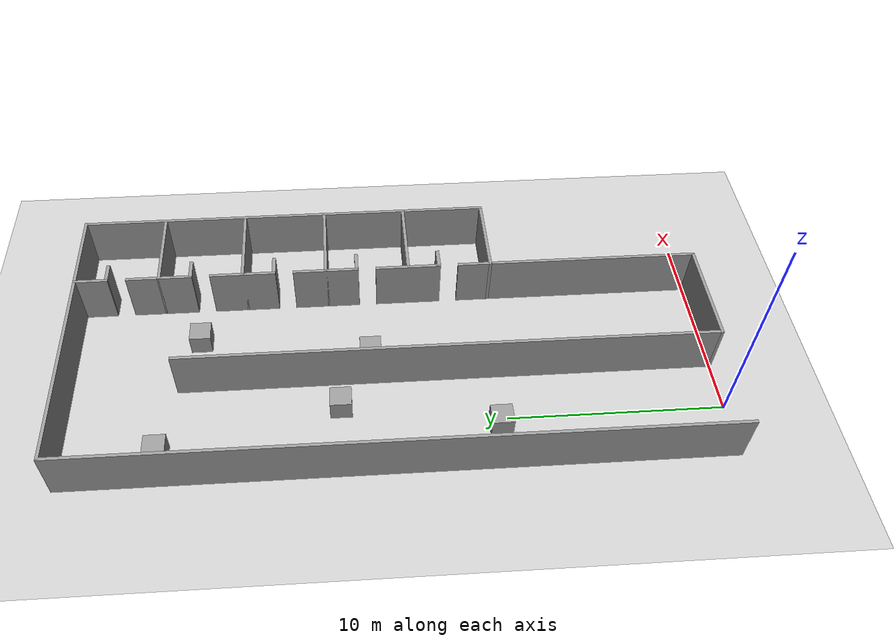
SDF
<sdf version="1.7">
 <world name="default">
  <light name="sun" type="directional">
   <pose>0 0 10 0 -0 0</pose>
   <diffuse>0.8 0.8 0.8 1</diffuse>
   <specular>0.2 0.2 0.2 1</specular>
   <attenuation>
    <range>1000</range>
    <constant>0.9</constant>
    <linear>0.01</linear>
    <quadratic>0.001</quadratic>
   </attenuation>
   <direction>-0.5 0.1 -0.9</direction>
   <spot><inner_angle>0</inner_angle><outer_angle>0</outer_angle><falloff>0</falloff></spot>
  </light>
  <model name="ground_plane">
   <static>1</static>
   <link name="link">
    <collision name="collision">
     <geometry><plane><normal>0 0 1</normal><size>100 100</size></plane></geometry>
     <surface>
      <contact><collide_bitmask>65535</collide_bitmask></contact>
      <friction><ode><mu>100</mu><mu2>50</mu2></ode></friction>
     </surface>
    </collision>
    <visual name="visual">
     <cast_shadows>0</cast_shadows>
     <geometry><plane><normal>0 0 1</normal><size>100 100</size></plane></geometry>
     <material>
      <script><uri>file://media/materials/scripts/gazebo.material</uri><name>Gazebo/Grey</name></script>
     </material>
    </visual>
   </link>
  </model>
  <gravity>0 0 -9.8</gravity>
  <magnetic_field>6e-06 2.3e-05 -4.2e-05</magnetic_field>
  <atmosphere type="adiabatic"/>
  <physics type="ode">
   <max_step_size>0.001</max_step_size>
   <real_time_factor>1</real_time_factor>
   <real_time_update_rate>1000</real_time_update_rate>
  </physics>
  <scene><ambient>0.4 0.4 0.4 1</ambient><background>0.7 0.7 0.7 1</background><shadows>1</shadows></scene>
  <spherical_coordinates>
   <surface_model>EARTH_WGS84</surface_model>
   <latitude_deg>0</latitude_deg>
   <longitude_deg>0</longitude_deg>
   <elevation>0</elevation>
   <heading_deg>0</heading_deg>
  </spherical_coordinates>
  <model name="World_map">
   <pose>4.5 15 0 0 -0 0</pose>
   <link name="Door_10">
    <collision name="Door_10_Collision">
     <geometry><box><size>1 0.17 2.5</size></box></geometry>
     <pose>0 0 1.25 0 -0 0</pose>
    </collision>
    <visual name="Door_10_Visual">
     <pose>0 0 1.25 0 -0 0</pose>
     <geometry><box><size>1 0.17 2.5</size></box></geometry>
     <material>
      <script><uri>file://media/materials/scripts/gazebo.material</uri><name>Gazebo/Grey</name></script>
     </material>
    </visual>
    <pose>3.5 5.5 0 0 -0 0</pose>
   </link>
   <link name="Door_6">
    <collision name="Door_6_Collision">
     <geometry><box><size>1 0.17 2.5</size></box></geometry>
     <pose>0 0 1.25 0 -0 0</pose>
    </collision>
    <visual name="Door_6_Visual">
     <pose>0 0 1.25 0 -0 0</pose>
     <geometry><box><size>1 0.17 2.5</size></box></geometry>
     <material>
      <script><uri>file://media/materials/scripts/gazebo.material</uri><name>Gazebo/Grey</name></script>
     </material>
    </visual>
    <pose>3.5 9.5 0 0 -0 0</pose>
   </link>
   <link name="Door_7">
    <collision name="Door_7_Collision">
     <geometry><box><size>1 0.17 2.5</size></box></geometry>
     <pose>0 0 1.25 0 -0 0</pose>
    </collision>
    <visual name="Door_7_Visual">
     <pose>0 0 1.25 0 -0 0</pose>
     <geometry><box><size>1 0.17 2.5</size></box></geometry>
     <material>
      <script><uri>file://media/materials/scripts/gazebo.material</uri><name>Gazebo/Grey</name></script>
     </material>
    </visual>
    <pose>3.5 -2.5 0 0 -0 0</pose>
   </link>
   <link name="Door_8">
    <collision name="Door_8_Collision">
     <geometry><box><size>1 0.17 2.5</size></box></geometry>
     <pose>0 0 1.25 0 -0 0</pose>
    </collision>
    <visual name="Door_8_Visual">
     <pose>0 0 1.25 0 -0 0</pose>
     <geometry><box><size>1 0.17 2.5</size></box></geometry>
     <material>
      <script><uri>file://media/materials/scripts/gazebo.material</uri><name>Gazebo/Grey</name></script>
     </material>
    </visual>
    <pose>3.5 1.5 0 0 -0 0</pose>
   </link>
   <link name="Door_9">
    <collision name="Door_9_Collision">
     <geometry><box><size>1 0.17 2.5</size></box></geometry>
     <pose>0 0 1.25 0 -0 0</pose>
    </collision>
    <visual name="Door_9_Visual">
     <pose>0 0 1.25 0 -0 0</pose>
     <geometry><box><size>1 0.17 2.5</size></box></geometry>
     <material>
      <script><uri>file://media/materials/scripts/gazebo.material</uri><name>Gazebo/Grey</name></script>
     </material>
    </visual>
    <pose>3.5 13.5 0 0 -0 0</pose>
   </link>
   <link name="Wall_28">
    <collision name="Wall_28_Collision">
     <geometry><box><size>3.15 0.15 2.5</size></box></geometry>
     <pose>0 0 1.25 0 -0 0</pose>
    </collision>
    <visual name="Wall_28_Visual">
     <pose>0 0 1.25 0 -0 0</pose>
     <geometry><box><size>3.15 0.15 2.5</size></box></geometry>
     <material>
      <script><uri>file://media/materials/scripts/gazebo.material</uri><name>Gazebo/Grey</name></script>
      <ambient>1 1 1 1</ambient>
     </material>
     <meta><layer>0</layer></meta>
    </visual>
    <pose>3 7 0 0 -0 -1.5708</pose>
   </link>
   <link name="Wall_30">
    <collision name="Wall_30_Collision">
     <geometry><box><size>3.15 0.15 2.5</size></box></geometry>
     <pose>0 0 1.25 0 -0 0</pose>
    </collision>
    <visual name="Wall_30_Visual">
     <pose>0 0 1.25 0 -0 0</pose>
     <geometry><box><size>3.15 0.15 2.5</size></box></geometry>
     <material>
      <script><uri>file://media/materials/scripts/gazebo.material</uri><name>Gazebo/Grey</name></script>
      <ambient>1 1 1 1</ambient>
     </material>
     <meta><layer>0</layer></meta>
    </visual>
    <pose>3 11 0 0 -0 -1.5708</pose>
   </link>
   <link name="Wall_32">
    <collision name="Wall_32_Collision">
     <geometry><box><size>3.15 0.15 2.5</size></box></geometry>
     <pose>0 0 1.25 0 -0 0</pose>
    </collision>
    <visual name="Wall_32_Visual">
     <pose>0 0 1.25 0 -0 0</pose>
     <geometry><box><size>3.15 0.15 2.5</size></box></geometry>
     <material>
      <script><uri>file://media/materials/scripts/gazebo.material</uri><name>Gazebo/Grey</name></script>
      <ambient>1 1 1 1</ambient>
     </material>
     <meta><layer>0</layer></meta>
    </visual>
    <pose>3 3 0 0 -0 -1.5708</pose>
   </link>
   <link name="Wall_34">
    <collision name="Wall_34_Collision">
     <geometry><box><size>3.15 0.15 2.5</size></box></geometry>
     <pose>0 0 1.25 0 -0 0</pose>
    </collision>
    <visual name="Wall_34_Visual">
     <pose>0 0 1.25 0 -0 0</pose>
     <geometry><box><size>3.15 0.15 2.5</size></box></geometry>
     <material>
      <script><uri>file://media/materials/scripts/gazebo.material</uri><name>Gazebo/Grey</name></script>
      <ambient>1 1 1 1</ambient>
     </material>
     <meta><layer>0</layer></meta>
    </visual>
    <pose>3 -1 0 0 -0 -1.5708</pose>
   </link>
   <link name="Wall_36">
    <collision name="Wall_36_Collision">
     <geometry><box><size>4.15 0.15 2.5</size></box></geometry>
     <pose>0 0 1.25 0 -0 0</pose>
    </collision>
    <visual name="Wall_36_Visual">
     <pose>0 0 1.25 0 -0 0</pose>
     <geometry><box><size>4.15 0.15 2.5</size></box></geometry>
     <material>
      <script><uri>file://media/materials/scripts/gazebo.material</uri><name>Gazebo/Grey</name></script>
      <ambient>1 1 1 1</ambient>
     </material>
     <meta><layer>0</layer></meta>
    </visual>
    <pose>5 15 0 0 -0 0</pose>
   </link>
   <link name="Wall_38">
    <collision name="Wall_38_Collision">
     <geometry><box><size>4.15 0.15 2.5</size></box></geometry>
     <pose>0 0 1.25 0 -0 0</pose>
    </collision>
    <visual name="Wall_38_Visual">
     <pose>0 0 1.25 0 -0 0</pose>
     <geometry><box><size>4.15 0.15 2.5</size></box></geometry>
     <material>
      <script><uri>file://media/materials/scripts/gazebo.material</uri><name>Gazebo/Grey</name></script>
      <ambient>1 1 1 1</ambient>
     </material>
     <meta><layer>0</layer></meta>
    </visual>
    <pose>5 11 0 0 -0 0</pose>
   </link>
   <link name="Wall_40">
    <collision name="Wall_40_Collision">
     <geometry><box><size>4.15 0.15 2.5</size></box></geometry>
     <pose>0 0 1.25 0 -0 0</pose>
    </collision>
    <visual name="Wall_40_Visual">
     <pose>0 0 1.25 0 -0 0</pose>
     <geometry><box><size>4.15 0.15 2.5</size></box></geometry>
     <material>
      <script><uri>file://media/materials/scripts/gazebo.material</uri><name>Gazebo/Grey</name></script>
      <ambient>1 1 1 1</ambient>
     </material>
     <meta><layer>0</layer></meta>
    </visual>
    <pose>5 7 0 0 -0 0</pose>
   </link>
   <link name="Wall_42">
    <collision name="Wall_42_Collision">
     <geometry><box><size>5.15 0.15 2.5</size></box></geometry>
     <pose>0 0 1.25 0 -0 0</pose>
    </collision>
    <visual name="Wall_42_Visual">
     <pose>0 0 1.25 0 -0 0</pose>
     <geometry><box><size>5.15 0.15 2.5</size></box></geometry>
     <material>
      <script><uri>file://media/materials/scripts/gazebo.material</uri><name>Gazebo/Grey</name></script>
      <ambient>1 1 1 1</ambient>
     </material>
     <meta><layer>0</layer></meta>
    </visual>
    <pose>0.5 -15 0 0 -0 0</pose>
   </link>
   <link name="Wall_44">
    <collision name="Wall_44_Collision">
     <geometry><box><size>25.15 0.15 2.5</size></box></geometry>
     <pose>0 0 1.25 0 -0 0</pose>
    </collision>
    <visual name="Wall_44_Visual">
     <pose>0 0 1.25 0 -0 0</pose>
     <geometry><box><size>25.15 0.15 2.5</size></box></geometry>
     <material>
      <script><uri>file://media/materials/scripts/gazebo.material</uri><name>Gazebo/Grey</name></script>
      <ambient>1 1 1 1</ambient>
     </material>
     <meta><layer>0</layer></meta>
    </visual>
    <pose>-2 -2.5 0 0 -0 1.5708</pose>
   </link>
   <link name="Wall_46">
    <collision name="Wall_46_Collision">
     <geometry><box><size>10.15 0.15 2.5</size></box></geometry>
     <pose>0 0 1.25 0 -0 0</pose>
    </collision>
    <visual name="Wall_46_Visual">
     <pose>0 0 1.25 0 -0 0</pose>
     <geometry><box><size>10.15 0.15 2.5</size></box></geometry>
     <material>
      <script><uri>file://media/materials/scripts/gazebo.material</uri><name>Gazebo/Grey</name></script>
      <ambient>1 1 1 1</ambient>
     </material>
     <meta><layer>0</layer></meta>
    </visual>
    <pose>-2 15 0 0 -0 0</pose>
   </link>
   <link name="Wall_48">
    <collision name="Wall_48_Collision">
     <geometry><box><size>4.15 0.15 2.5</size></box></geometry>
     <pose>0 0 1.25 0 -0 0</pose>
    </collision>
    <visual name="Wall_48_Visual">
     <pose>0 0 1.25 0 -0 0</pose>
     <geometry><box><size>4.15 0.15 2.5</size></box></geometry>
     <material>
      <script><uri>file://media/materials/scripts/gazebo.material</uri><name>Gazebo/Grey</name></script>
      <ambient>1 1 1 1</ambient>
     </material>
     <meta><layer>0</layer></meta>
    </visual>
    <pose>5 3 0 0 -0 0</pose>
   </link>
   <link name="Wall_50">
    <collision name="Wall_50_Collision">
     <geometry><box><size>1.65 0.15 2.5</size></box></geometry>
     <pose>0 0 1.25 0 -0 0</pose>
    </collision>
    <visual name="Wall_50_Visual">
     <pose>0 0 1.25 0 -0 0</pose>
     <geometry><box><size>1.65 0.15 2.5</size></box></geometry>
     <material>
      <script><uri>file://media/materials/scripts/gazebo.material</uri><name>Gazebo/Grey</name></script>
      <ambient>1 1 1 1</ambient>
     </material>
     <meta><layer>0</layer></meta>
    </visual>
    <pose>3 14.25 0 0 -0 -1.5708</pose>
   </link>
   <link name="Wall_52">
    <collision name="Wall_52_Collision">
     <geometry><box><size>11.65 0.15 2.5</size></box></geometry>
     <pose>0 0 1.25 0 -0 0</pose>
    </collision>
    <visual name="Wall_52_Visual">
     <pose>0 0 1.25 0 -0 0</pose>
     <geometry><box><size>11.65 0.15 2.5</size></box></geometry>
     <material>
      <script><uri>file://media/materials/scripts/gazebo.material</uri><name>Gazebo/Grey</name></script>
      <ambient>1 1 1 1</ambient>
     </material>
     <meta><layer>0</layer></meta>
    </visual>
    <pose>3 -9.25 0 0 -0 -1.5708</pose>
   </link>
   <link name="Wall_54">
    <collision name="Wall_54_Collision">
     <geometry><box><size>4.15 0.15 2.5</size></box></geometry>
     <pose>0 0 1.25 0 -0 0</pose>
    </collision>
    <visual name="Wall_54_Visual">
     <pose>0 0 1.25 0 -0 0</pose>
     <geometry><box><size>4.15 0.15 2.5</size></box></geometry>
     <material>
      <script><uri>file://media/materials/scripts/gazebo.material</uri><name>Gazebo/Grey</name></script>
      <ambient>1 1 1 1</ambient>
     </material>
     <meta><layer>0</layer></meta>
    </visual>
    <pose>5 -1 0 0 -0 0</pose>
   </link>
   <link name="Wall_56">
    <collision name="Wall_56_Collision">
     <geometry><box><size>4.15 0.15 2.5</size></box></geometry>
     <pose>0 0 1.25 0 -0 0</pose>
    </collision>
    <visual name="Wall_56_Visual">
     <pose>0 0 1.25 0 -0 0</pose>
     <geometry><box><size>4.15 0.15 2.5</size></box></geometry>
     <material>
      <script><uri>file://media/materials/scripts/gazebo.material</uri><name>Gazebo/Grey</name></script>
      <ambient>1 1 1 1</ambient>
     </material>
     <meta><layer>0</layer></meta>
    </visual>
    <pose>5 -5 0 0 -0 0</pose>
   </link>
   <link name="Wall_58">
    <collision name="Wall_58_Collision">
     <geometry><box><size>30.15 0.15 2.5</size></box></geometry>
     <pose>0 0 1.25 0 -0 0</pose>
    </collision>
    <visual name="Wall_58_Visual">
     <pose>0 0 1.25 0 -0 0</pose>
     <geometry><box><size>30.15 0.15 2.5</size></box></geometry>
     <material>
      <script><uri>file://media/materials/scripts/gazebo.material</uri><name>Gazebo/Grey</name></script>
      <ambient>1 1 1 1</ambient>
     </material>
     <meta><layer>0</layer></meta>
    </visual>
    <pose>-7 0 0 0 -0 1.5708</pose>
   </link>
   <link name="Wall_60">
    <collision name="Wall_60_Collision">
     <geometry><box><size>20.15 0.15 2.5</size></box></geometry>
     <pose>0 0 1.25 0 -0 0</pose>
    </collision>
    <visual name="Wall_60_Visual">
     <pose>0 0 1.25 0 -0 0</pose>
     <geometry><box><size>20.15 0.15 2.5</size></box></geometry>
     <material>
      <script><uri>file://media/materials/scripts/gazebo.material</uri><name>Gazebo/Grey</name></script>
      <ambient>1 1 1 1</ambient>
     </material>
     <meta><layer>0</layer></meta>
    </visual>
    <pose>7 5 0 0 -0 -1.5708</pose>
   </link>
   <static>1</static>
  </model>
  <model name="unit_box">
   <pose>-0.373306 10.3575 0.499995 0 1e-05 0</pose>
   <link name="link">
    <inertial>
     <mass>1</mass>
     <inertia>
      <ixx>0.166667</ixx>
      <ixy>0</ixy>
      <ixz>0</ixz>
      <iyy>0.166667</iyy>
      <iyz>0</iyz>
      <izz>0.166667</izz>
     </inertia>
    </inertial>
    <collision name="collision"><geometry><box><size>1 1 1</size></box></geometry></collision>
    <visual name="visual">
     <geometry><box><size>1 1 1</size></box></geometry>
     <material>
      <script><name>Gazebo/Grey</name><uri>file://media/materials/scripts/gazebo.material</uri></script>
     </material>
    </visual>
   </link>
  </model>
  <model name="unit_box_0">
   <pose>1.04727 17.5219 0.499995 -1e-05 -0 -0</pose>
   <link name="link">
    <inertial>
     <mass>1</mass>
     <inertia>
      <ixx>0.166667</ixx>
      <ixy>0</ixy>
      <ixz>0</ixz>
      <iyy>0.166667</iyy>
      <iyz>0</iyz>
      <izz>0.166667</izz>
     </inertia>
    </inertial>
    <collision name="collision"><geometry><box><size>1 1 1</size></box></geometry></collision>
    <visual name="visual">
     <geometry><box><size>1 1 1</size></box></geometry>
     <material>
      <script><name>Gazebo/Grey</name><uri>file://media/materials/scripts/gazebo.material</uri></script>
     </material>
    </visual>
   </link>
  </model>
  <model name="unit_box_1">
   <pose>-1.04157 25.693 0.499995 0 1e-05 0</pose>
   <link name="link">
    <inertial>
     <mass>1</mass>
     <inertia>
      <ixx>0.166667</ixx>
      <ixy>0</ixy>
      <ixz>0</ixz>
      <iyy>0.166667</iyy>
      <iyz>0</iyz>
      <izz>0.166667</izz>
     </inertia>
    </inertial>
    <collision name="collision"><geometry><box><size>1 1 1</size></box></geometry></collision>
    <visual name="visual">
     <geometry><box><size>1 1 1</size></box></geometry>
     <material>
      <script><name>Gazebo/Grey</name><uri>file://media/materials/scripts/gazebo.material</uri></script>
     </material>
    </visual>
   </link>
  </model>
  <model name="unit_box_2">
   <pose>5.32308 24.0963 0.499995 -1e-05 -0 0</pose>
   <link name="link">
    <inertial>
     <mass>1</mass>
     <inertia>
      <ixx>0.166667</ixx>
      <ixy>0</ixy>
      <ixz>0</ixz>
      <iyy>0.166667</iyy>
      <iyz>0</iyz>
      <izz>0.166667</izz>
     </inertia>
    </inertial>
    <collision name="collision"><geometry><box><size>1 1 1</size></box></geometry></collision>
    <visual name="visual">
     <geometry><box><size>1 1 1</size></box></geometry>
     <material>
      <script><name>Gazebo/Grey</name><uri>file://media/materials/scripts/gazebo.material</uri></script>
     </material>
    </visual>
   </link>
  </model>
  <model name="unit_box_3">
   <pose>3.96908 16.0285 0.5 0 -0 0</pose>
   <link name="link">
    <inertial>
     <mass>1</mass>
     <inertia>
      <ixx>0.166667</ixx>
      <ixy>0</ixy>
      <ixz>0</ixz>
      <iyy>0.166667</iyy>
      <iyz>0</iyz>
      <izz>0.166667</izz>
     </inertia>
    </inertial>
    <collision name="collision"><geometry><box><size>1 1 1</size></box></geometry></collision>
    <visual name="visual">
     <geometry><box><size>1 1 1</size></box></geometry>
     <material>
      <script><name>Gazebo/Grey</name><uri>file://media/materials/scripts/gazebo.material</uri></script>
     </material>
    </visual>
   </link>
  </model>
 </world>
</sdf>
